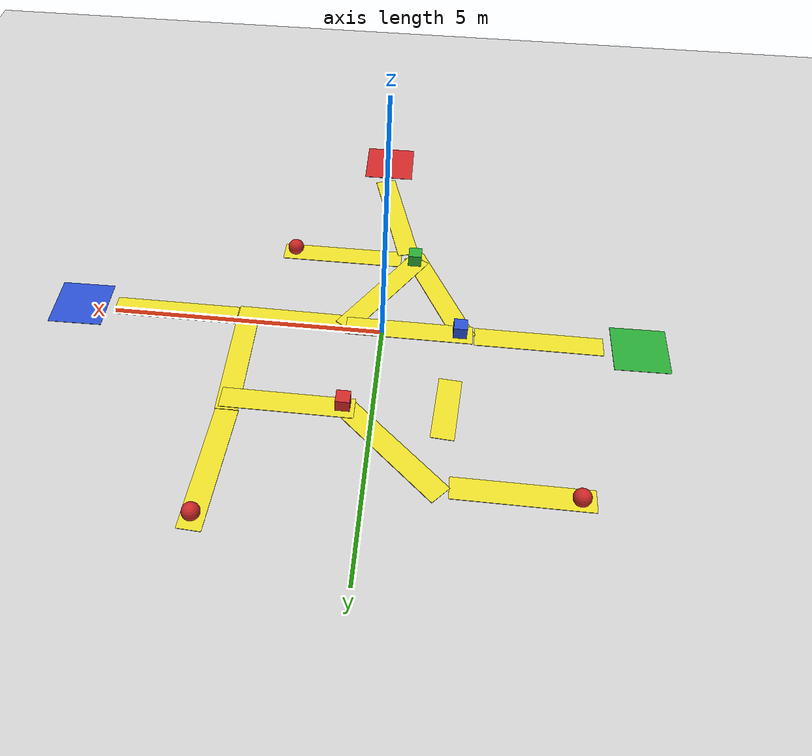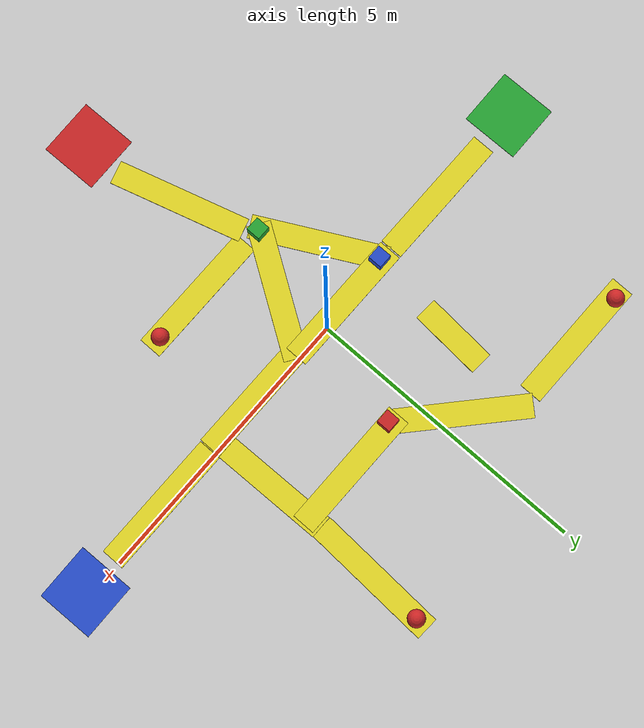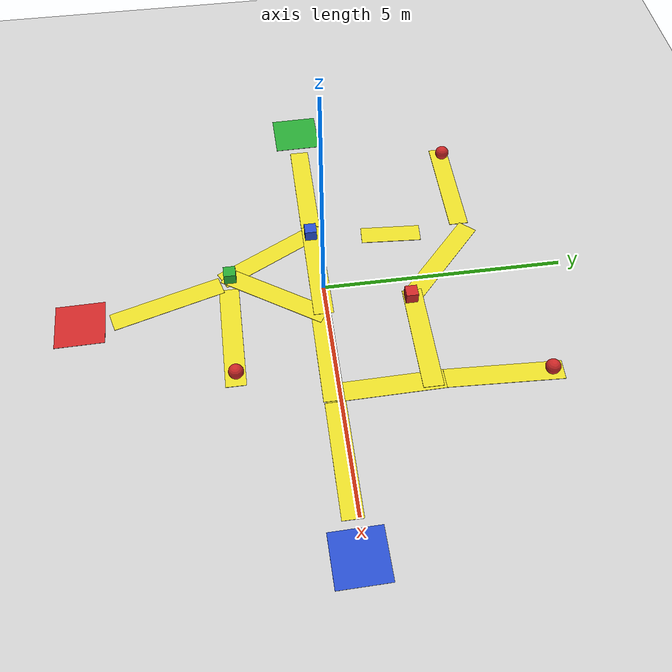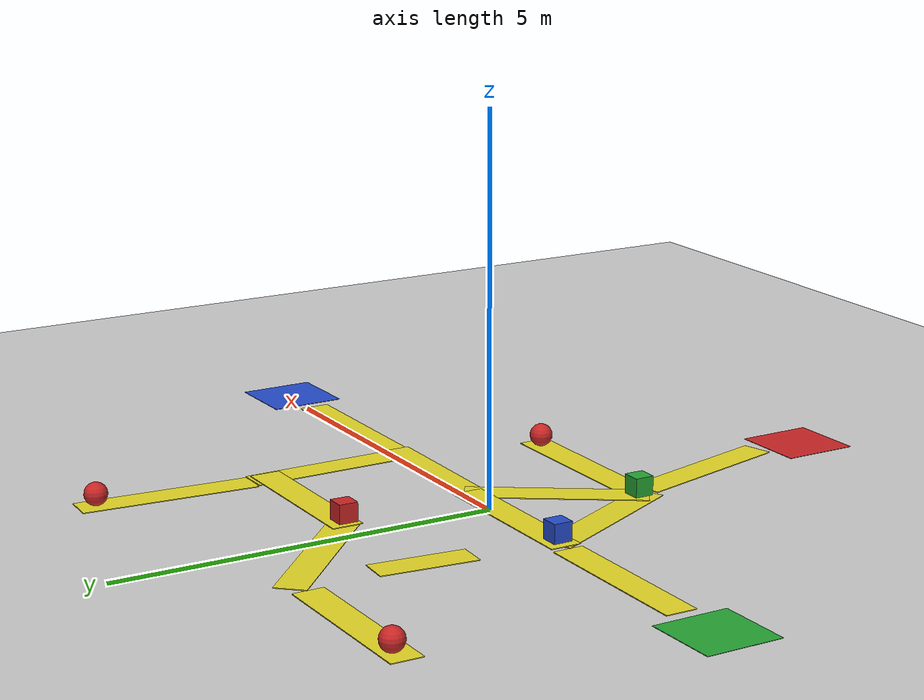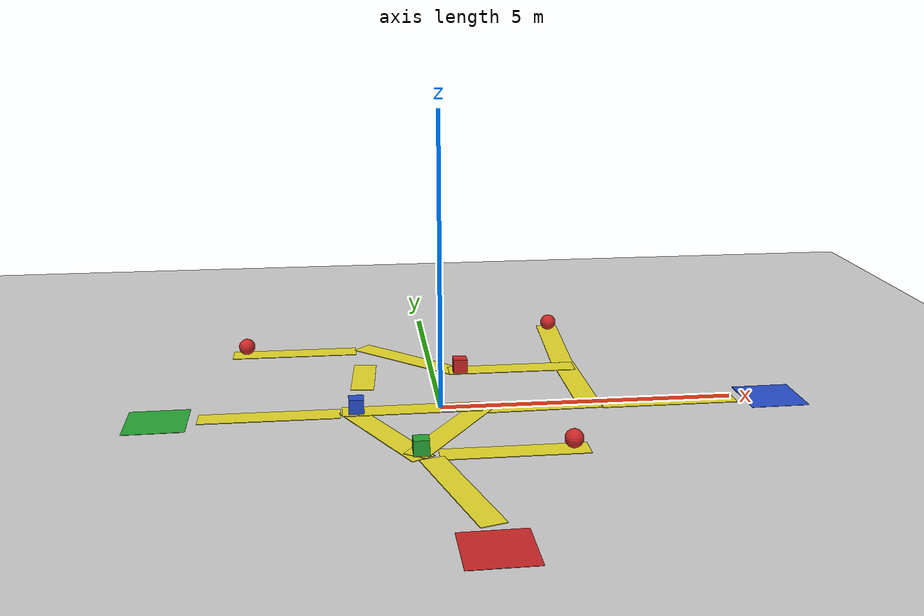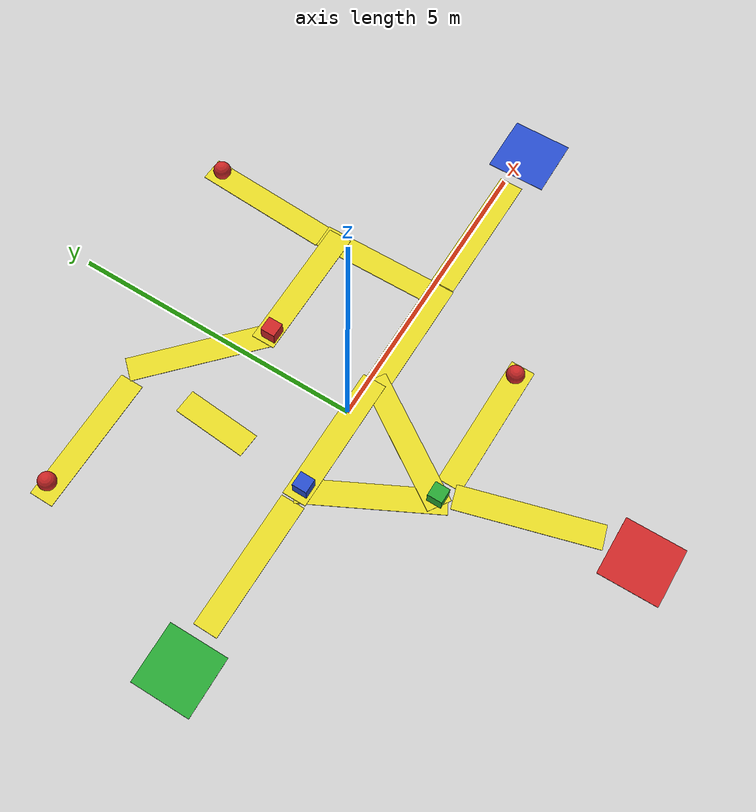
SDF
<sdf version="1.7">
 <world name="default">
  <light name="sun" type="directional">
   <pose>0 0 10 0 -0 0</pose>
   <diffuse>0.8 0.8 0.8 1</diffuse>
   <specular>0.2 0.2 0.2 1</specular>
   <attenuation>
    <range>1000</range>
    <constant>0.9</constant>
    <linear>0.01</linear>
    <quadratic>0.001</quadratic>
   </attenuation>
   <direction>-0.5 0.1 -0.9</direction>
   <spot><inner_angle>0</inner_angle><outer_angle>0</outer_angle><falloff>0</falloff></spot>
  </light>
  <model name="ground_plane">
   <static>1</static>
   <link name="link">
    <collision name="collision">
     <geometry><plane><normal>0 0 1</normal><size>100 100</size></plane></geometry>
     <surface><friction><ode><mu>100</mu><mu2>50</mu2></ode></friction></surface>
    </collision>
    <visual name="visual">
     <cast_shadows>0</cast_shadows>
     <geometry><plane><normal>0 0 1</normal><size>100 100</size></plane></geometry>
     <material>
      <script><uri>file://media/materials/scripts/gazebo.material</uri><name>Gazebo/Grey</name></script>
     </material>
    </visual>
   </link>
  </model>
  <gravity>0 0 -9.8</gravity>
  <magnetic_field>6e-06 2.3e-05 -4.2e-05</magnetic_field>
  <atmosphere type="adiabatic"/>
  <physics type="ode">
   <max_step_size>0.001</max_step_size>
   <real_time_factor>1</real_time_factor>
   <real_time_update_rate>1000</real_time_update_rate>
  </physics>
  <scene><ambient>0.4 0.4 0.4 1</ambient><background>0.7 0.7 0.7 1</background><shadows>1</shadows></scene>
  <spherical_coordinates>
   <surface_model>EARTH_WGS84</surface_model>
   <latitude_deg>0</latitude_deg>
   <longitude_deg>0</longitude_deg>
   <elevation>0</elevation>
   <heading_deg>0</heading_deg>
  </spherical_coordinates>
  <model name="bluecube">
   <link name="link_0">
    <inertial>
     <mass>0.05</mass>
     <inertia>
      <ixx>0.00833333</ixx>
      <ixy>0</ixy>
      <ixz>0</ixz>
      <iyy>0.00833333</iyy>
      <iyz>0</iyz>
      <izz>0.00833333</izz>
     </inertia>
    </inertial>
    <visual name="visual">
     <geometry><box><size>0.25 0.25 0.25</size></box></geometry>
     <material>
      <lighting>1</lighting>
      <script><uri>file://media/materials/scripts/gazebo.material</uri><name>Gazebo/Blue</name></script>
      <shader type="pixel"><normal_map>__default__</normal_map></shader>
      <ambient>0 0 1 1</ambient>
      <diffuse>0 0 1 1</diffuse>
      <specular>0.1 0.1 0.1 1</specular>
      <emissive>0 0 0 1</emissive>
     </material>
    </visual>
    <collision name="collision">
     <geometry><box><size>0.25 0.25 0.25</size></box></geometry>
     <surface>
      <friction>
       <ode><mu>0.1</mu><mu2>0.1</mu2><fdir1>0 0 0</fdir1><slip1>0</slip1><slip2>0</slip2></ode>
       <torsional>
        <coefficient>1</coefficient>
        <patch_radius>0</patch_radius>
        <surface_radius>0</surface_radius>
        <use_patch_radius>1</use_patch_radius>
        <ode><slip>0</slip></ode>
       </torsional>
      </friction>
      <bounce><restitution_coefficient>0</restitution_coefficient><threshold>1e+06</threshold></bounce>
      <contact>
       <collide_without_contact>0</collide_without_contact>
       <collide_without_contact_bitmask>1</collide_without_contact_bitmask>
       <collide_bitmask>1</collide_bitmask>
       <ode>
        <soft_cfm>0</soft_cfm>
        <soft_erp>0.2</soft_erp>
        <kp>1e+13</kp>
        <kd>1</kd>
        <max_vel>0.01</max_vel>
        <min_depth>0</min_depth>
       </ode>
       <bullet>
        <split_impulse>1</split_impulse>
        <split_impulse_penetration_threshold>-0.01</split_impulse_penetration_threshold>
        <soft_cfm>0</soft_cfm>
        <soft_erp>0.2</soft_erp>
        <kp>1e+13</kp>
        <kd>1</kd>
       </bullet>
      </contact>
     </surface>
    </collision>
   </link>
   <static>0</static>
   <pose>-1.41077 -0.107682 0.161123 -0.002132 -0.001105 0.000801</pose>
  </model>
  <model name="greencube">
   <link name="link_0">
    <inertial>
     <mass>0.05</mass>
     <inertia>
      <ixx>0.00833333</ixx>
      <ixy>0</ixy>
      <ixz>0</ixz>
      <iyy>0.00833333</iyy>
      <iyz>0</iyz>
      <izz>0.00833333</izz>
     </inertia>
    </inertial>
    <visual name="visual">
     <geometry><box><size>0.25 0.25 0.25</size></box></geometry>
     <material>
      <lighting>1</lighting>
      <script><uri>file://media/materials/scripts/gazebo.material</uri><name>Gazebo/Green</name></script>
      <shader type="pixel"><normal_map>__default__</normal_map></shader>
      <ambient>0 1 0 1</ambient>
      <diffuse>0 1 0 1</diffuse>
      <specular>0.1 0.1 0.1 1</specular>
      <emissive>0 0 0 1</emissive>
     </material>
    </visual>
    <collision name="collision">
     <geometry><box><size>0.25 0.25 0.25</size></box></geometry>
     <surface>
      <friction>
       <ode><mu>0.1</mu><mu2>0.1</mu2><fdir1>0 0 0</fdir1><slip1>0</slip1><slip2>0</slip2></ode>
       <torsional>
        <coefficient>1</coefficient>
        <patch_radius>0</patch_radius>
        <surface_radius>0</surface_radius>
        <use_patch_radius>1</use_patch_radius>
        <ode><slip>0</slip></ode>
       </torsional>
      </friction>
      <bounce><restitution_coefficient>0</restitution_coefficient><threshold>1e+06</threshold></bounce>
      <contact>
       <collide_without_contact>0</collide_without_contact>
       <collide_without_contact_bitmask>1</collide_without_contact_bitmask>
       <collide_bitmask>1</collide_bitmask>
       <ode>
        <soft_cfm>0</soft_cfm>
        <soft_erp>0.2</soft_erp>
        <kp>1e+13</kp>
        <kd>1</kd>
        <max_vel>0.01</max_vel>
        <min_depth>0</min_depth>
       </ode>
       <bullet>
        <split_impulse>1</split_impulse>
        <split_impulse_penetration_threshold>-0.01</split_impulse_penetration_threshold>
        <soft_cfm>0</soft_cfm>
        <soft_erp>0.2</soft_erp>
        <kp>1e+13</kp>
        <kd>1</kd>
       </bullet>
      </contact>
     </surface>
    </collision>
   </link>
   <static>0</static>
   <pose>-0.470413 -1.89682 0.152289 -0.002128 -0.002744 -9.7e-05</pose>
  </model>
  <model name="redcube">
   <link name="link_0">
    <inertial>
     <mass>0.05</mass>
     <inertia>
      <ixx>0.00833333</ixx>
      <ixy>0</ixy>
      <ixz>0</ixz>
      <iyy>0.00833333</iyy>
      <iyz>0</iyz>
      <izz>0.00833333</izz>
     </inertia>
    </inertial>
    <visual name="visual">
     <geometry><box><size>0.25 0.25 0.25</size></box></geometry>
     <material>
      <lighting>1</lighting>
      <script><uri>file://media/materials/scripts/gazebo.material</uri><name>Gazebo/Red</name></script>
      <shader type="pixel"><normal_map>__default__</normal_map></shader>
      <ambient>1 0 0 1</ambient>
      <diffuse>1 0 0 1</diffuse>
      <specular>0.1 0.1 0.1 1</specular>
      <emissive>0 0 0 1</emissive>
     </material>
    </visual>
    <collision name="collision">
     <geometry><box><size>0.25 0.25 0.25</size></box></geometry>
     <surface>
      <friction>
       <ode><mu>0.1</mu><mu2>0.1</mu2><fdir1>0 0 0</fdir1><slip1>0</slip1><slip2>0</slip2></ode>
       <torsional>
        <coefficient>1</coefficient>
        <patch_radius>0</patch_radius>
        <surface_radius>0</surface_radius>
        <use_patch_radius>1</use_patch_radius>
        <ode><slip>0</slip></ode>
       </torsional>
      </friction>
      <bounce><restitution_coefficient>0</restitution_coefficient><threshold>1e+06</threshold></bounce>
      <contact>
       <collide_without_contact>0</collide_without_contact>
       <collide_without_contact_bitmask>1</collide_without_contact_bitmask>
       <collide_bitmask>1</collide_bitmask>
       <ode>
        <soft_cfm>0</soft_cfm>
        <soft_erp>0.2</soft_erp>
        <kp>1e+13</kp>
        <kd>1</kd>
        <max_vel>0.01</max_vel>
        <min_depth>0</min_depth>
       </ode>
       <bullet>
        <split_impulse>1</split_impulse>
        <split_impulse_penetration_threshold>-0.01</split_impulse_penetration_threshold>
        <soft_cfm>0</soft_cfm>
        <soft_erp>0.2</soft_erp>
        <kp>1e+13</kp>
        <kd>1</kd>
       </bullet>
      </contact>
     </surface>
    </collision>
   </link>
   <static>0</static>
   <pose>0.508145 1.73672 0.149395 0.003593 -0.000509 -0.000436</pose>
  </model>
  <model name="yellowcube">
   <link name="link">
    <inertial>
     <mass>10000</mass>
     <inertia><ixx>1666.67</ixx><ixy>0</ixy><ixz>0</ixz><iyy>1666.67</iyy><iyz>0</iyz><izz>1666.67</izz></inertia>
    </inertial>
    <visual name="visual">
     <geometry><box><size>2.31861 0.405301 0.01</size></box></geometry>
     <material>
      <script><name>Gazebo/Yellow</name><uri>file://media/materials/scripts/gazebo.material</uri></script>
      <shader type="pixel"><normal_map>__default__</normal_map></shader>
      <ambient>1 1 0 1</ambient>
      <diffuse>1 1 0 1</diffuse>
      <emissive>0 0 0 1</emissive>
     </material>
    </visual>
    <collision name="collision">
     <geometry><box><size>2.31861 0.405301 0.011851</size></box></geometry>
     <surface>
      <friction>
       <ode><mu>1</mu><mu2>1</mu2><fdir1>0 0 0</fdir1><slip1>0</slip1><slip2>0</slip2></ode>
       <torsional>
        <coefficient>1</coefficient>
        <patch_radius>0</patch_radius>
        <surface_radius>0</surface_radius>
        <use_patch_radius>1</use_patch_radius>
        <ode><slip>0</slip></ode>
       </torsional>
      </friction>
      <bounce><restitution_coefficient>0</restitution_coefficient><threshold>1e+06</threshold></bounce>
      <contact>
       <collide_without_contact>0</collide_without_contact>
       <collide_without_contact_bitmask>1</collide_without_contact_bitmask>
       <collide_bitmask>1</collide_bitmask>
       <ode>
        <soft_cfm>0</soft_cfm>
        <soft_erp>0.2</soft_erp>
        <kp>1e+13</kp>
        <kd>1</kd>
        <max_vel>0.01</max_vel>
        <min_depth>0</min_depth>
       </ode>
       <bullet>
        <split_impulse>1</split_impulse>
        <split_impulse_penetration_threshold>-0.01</split_impulse_penetration_threshold>
        <soft_cfm>0</soft_cfm>
        <soft_erp>0.2</soft_erp>
        <kp>1e+13</kp>
        <kd>1</kd>
       </bullet>
      </contact>
     </surface>
    </collision>
   </link>
   <static>0</static>
   <pose>-0.486369 -0.079066 0.031159 -0.002126 -0.001111 0.000133</pose>
  </model>
  <model name="yellowcube_0">
   <link name="link">
    <inertial>
     <mass>10000</mass>
     <inertia><ixx>1666.67</ixx><ixy>0</ixy><ixz>0</ixz><iyy>1666.67</iyy><iyz>0</iyz><izz>1666.67</izz></inertia>
    </inertial>
    <visual name="visual">
     <geometry><box><size>1.26774 0.405301 0.01</size></box></geometry>
     <material>
      <script><name>Gazebo/Yellow</name><uri>file://media/materials/scripts/gazebo.material</uri></script>
      <shader type="pixel"><normal_map>__default__</normal_map></shader>
      <ambient>1 1 0 1</ambient>
      <diffuse>1 1 0 1</diffuse>
      <emissive>0 0 0 1</emissive>
     </material>
    </visual>
    <collision name="collision">
     <geometry><box><size>1.26774 0.405301 0.011851</size></box></geometry>
     <surface>
      <friction>
       <ode><mu>1</mu><mu2>1</mu2><fdir1>0 0 0</fdir1><slip1>0</slip1><slip2>0</slip2></ode>
       <torsional>
        <coefficient>1</coefficient>
        <patch_radius>0</patch_radius>
        <surface_radius>0</surface_radius>
        <use_patch_radius>1</use_patch_radius>
        <ode><slip>0</slip></ode>
       </torsional>
      </friction>
      <bounce><restitution_coefficient>0</restitution_coefficient><threshold>1e+06</threshold></bounce>
      <contact>
       <collide_without_contact>0</collide_without_contact>
       <collide_without_contact_bitmask>1</collide_without_contact_bitmask>
       <collide_bitmask>1</collide_bitmask>
       <ode>
        <soft_cfm>0</soft_cfm>
        <soft_erp>0.2</soft_erp>
        <kp>1e+13</kp>
        <kd>1</kd>
        <max_vel>0.01</max_vel>
        <min_depth>0</min_depth>
       </ode>
       <bullet>
        <split_impulse>1</split_impulse>
        <split_impulse_penetration_threshold>-0.01</split_impulse_penetration_threshold>
        <soft_cfm>0</soft_cfm>
        <soft_erp>0.2</soft_erp>
        <kp>1e+13</kp>
        <kd>1</kd>
       </bullet>
      </contact>
     </surface>
    </collision>
   </link>
   <static>0</static>
   <pose>-1.24305 1.61477 0.01794 3e-06 -0.00766 1.50072</pose>
  </model>
  <model name="yellowcube_1">
   <link name="link">
    <inertial>
     <mass>10000</mass>
     <inertia><ixx>1666.67</ixx><ixy>0</ixy><ixz>0</ixz><iyy>1666.67</iyy><iyz>0</iyz><izz>1666.67</izz></inertia>
    </inertial>
    <visual name="visual">
     <geometry><box><size>2.31861 0.405301 0.01</size></box></geometry>
     <material>
      <script><name>Gazebo/Yellow</name><uri>file://media/materials/scripts/gazebo.material</uri></script>
      <shader type="pixel"><normal_map>__default__</normal_map></shader>
      <ambient>1 1 0 1</ambient>
      <diffuse>1 1 0 1</diffuse>
      <emissive>0 0 0 1</emissive>
     </material>
    </visual>
    <collision name="collision">
     <geometry><box><size>2.31861 0.405301 0.011851</size></box></geometry>
     <surface>
      <friction>
       <ode><mu>1</mu><mu2>1</mu2><fdir1>0 0 0</fdir1><slip1>0</slip1><slip2>0</slip2></ode>
       <torsional>
        <coefficient>1</coefficient>
        <patch_radius>0</patch_radius>
        <surface_radius>0</surface_radius>
        <use_patch_radius>1</use_patch_radius>
        <ode><slip>0</slip></ode>
       </torsional>
      </friction>
      <bounce><restitution_coefficient>0</restitution_coefficient><threshold>1e+06</threshold></bounce>
      <contact>
       <collide_without_contact>0</collide_without_contact>
       <collide_without_contact_bitmask>1</collide_without_contact_bitmask>
       <collide_bitmask>1</collide_bitmask>
       <ode>
        <soft_cfm>0</soft_cfm>
        <soft_erp>0.2</soft_erp>
        <kp>1e+13</kp>
        <kd>1</kd>
        <max_vel>0.01</max_vel>
        <min_depth>0</min_depth>
       </ode>
       <bullet>
        <split_impulse>1</split_impulse>
        <split_impulse_penetration_threshold>-0.01</split_impulse_penetration_threshold>
        <soft_cfm>0</soft_cfm>
        <soft_erp>0.2</soft_erp>
        <kp>1e+13</kp>
        <kd>1</kd>
       </bullet>
      </contact>
     </surface>
    </collision>
   </link>
   <static>0</static>
   <pose>2.49159 0.875406 0.006372 -1e-06 0.000385 -1.55579</pose>
  </model>
  <model name="yellowcube_2">
   <link name="link">
    <inertial>
     <mass>10000</mass>
     <inertia><ixx>1666.67</ixx><ixy>0</ixy><ixz>0</ixz><iyy>1666.67</iyy><iyz>0</iyz><izz>1666.67</izz></inertia>
    </inertial>
    <visual name="visual">
     <geometry><box><size>2.31861 0.405301 0.01</size></box></geometry>
     <material>
      <script><name>Gazebo/Yellow</name><uri>file://media/materials/scripts/gazebo.material</uri></script>
      <shader type="pixel"><normal_map>__default__</normal_map></shader>
      <ambient>1 1 0 1</ambient>
      <diffuse>1 1 0 1</diffuse>
      <emissive>0 0 0 1</emissive>
     </material>
    </visual>
    <collision name="collision">
     <geometry><box><size>2.31861 0.405301 0.011851</size></box></geometry>
     <surface>
      <friction>
       <ode><mu>1</mu><mu2>1</mu2><fdir1>0 0 0</fdir1><slip1>0</slip1><slip2>0</slip2></ode>
       <torsional>
        <coefficient>1</coefficient>
        <patch_radius>0</patch_radius>
        <surface_radius>0</surface_radius>
        <use_patch_radius>1</use_patch_radius>
        <ode><slip>0</slip></ode>
       </torsional>
      </friction>
      <bounce><restitution_coefficient>0</restitution_coefficient><threshold>1e+06</threshold></bounce>
      <contact>
       <collide_without_contact>0</collide_without_contact>
       <collide_without_contact_bitmask>1</collide_without_contact_bitmask>
       <collide_bitmask>1</collide_bitmask>
       <ode>
        <soft_cfm>0</soft_cfm>
        <soft_erp>0.2</soft_erp>
        <kp>1e+13</kp>
        <kd>1</kd>
        <max_vel>0.01</max_vel>
        <min_depth>0</min_depth>
       </ode>
       <bullet>
        <split_impulse>1</split_impulse>
        <split_impulse_penetration_threshold>-0.01</split_impulse_penetration_threshold>
        <soft_cfm>0</soft_cfm>
        <soft_erp>0.2</soft_erp>
        <kp>1e+13</kp>
        <kd>1</kd>
       </bullet>
      </contact>
     </surface>
    </collision>
   </link>
   <static>0</static>
   <pose>-0.980984 -1.03916 0.011959 6.5e-05 0.005224 -1.0904</pose>
  </model>
  <model name="yellowcube_3">
   <link name="link">
    <inertial>
     <mass>10000</mass>
     <inertia><ixx>1666.67</ixx><ixy>0</ixy><ixz>0</ixz><iyy>1666.67</iyy><iyz>0</iyz><izz>1666.67</izz></inertia>
    </inertial>
    <visual name="visual">
     <geometry><box><size>2.31861 0.405301 0.01</size></box></geometry>
     <material>
      <script><name>Gazebo/Yellow</name><uri>file://media/materials/scripts/gazebo.material</uri></script>
      <shader type="pixel"><normal_map>__default__</normal_map></shader>
      <ambient>1 1 0 1</ambient>
      <diffuse>1 1 0 1</diffuse>
      <emissive>0 0 0 1</emissive>
     </material>
    </visual>
    <collision name="collision">
     <geometry><box><size>2.31861 0.405301 0.011851</size></box></geometry>
     <surface>
      <friction>
       <ode><mu>1</mu><mu2>1</mu2><fdir1>0 0 0</fdir1><slip1>0</slip1><slip2>0</slip2></ode>
       <torsional>
        <coefficient>1</coefficient>
        <patch_radius>0</patch_radius>
        <surface_radius>0</surface_radius>
        <use_patch_radius>1</use_patch_radius>
        <ode><slip>0</slip></ode>
       </torsional>
      </friction>
      <bounce><restitution_coefficient>0</restitution_coefficient><threshold>1e+06</threshold></bounce>
      <contact>
       <collide_without_contact>0</collide_without_contact>
       <collide_without_contact_bitmask>1</collide_without_contact_bitmask>
       <collide_bitmask>1</collide_bitmask>
       <ode>
        <soft_cfm>0</soft_cfm>
        <soft_erp>0.2</soft_erp>
        <kp>1e+13</kp>
        <kd>1</kd>
        <max_vel>0.01</max_vel>
        <min_depth>0</min_depth>
       </ode>
       <bullet>
        <split_impulse>1</split_impulse>
        <split_impulse_penetration_threshold>-0.01</split_impulse_penetration_threshold>
        <soft_cfm>0</soft_cfm>
        <soft_erp>0.2</soft_erp>
        <kp>1e+13</kp>
        <kd>1</kd>
       </bullet>
      </contact>
     </surface>
    </collision>
   </link>
   <static>0</static>
   <pose>1.53113 -0.134214 0.014136 4.5e-05 -0.007145 -0.001095</pose>
  </model>
  <model name="yellowcube_4">
   <link name="link">
    <inertial>
     <mass>10000</mass>
     <inertia><ixx>1666.67</ixx><ixy>0</ixy><ixz>0</ixz><iyy>1666.67</iyy><iyz>0</iyz><izz>1666.67</izz></inertia>
    </inertial>
    <visual name="visual">
     <geometry><box><size>2.31861 0.405301 0.01</size></box></geometry>
     <material>
      <script><name>Gazebo/Yellow</name><uri>file://media/materials/scripts/gazebo.material</uri></script>
      <shader type="pixel"><normal_map>__default__</normal_map></shader>
      <ambient>1 1 0 1</ambient>
      <diffuse>1 1 0 1</diffuse>
      <emissive>0 0 0 1</emissive>
     </material>
    </visual>
    <collision name="collision">
     <geometry><box><size>2.31861 0.405301 0.011851</size></box></geometry>
     <surface>
      <friction>
       <ode><mu>1</mu><mu2>1</mu2><fdir1>0 0 0</fdir1><slip1>0</slip1><slip2>0</slip2></ode>
       <torsional>
        <coefficient>1</coefficient>
        <patch_radius>0</patch_radius>
        <surface_radius>0</surface_radius>
        <use_patch_radius>1</use_patch_radius>
        <ode><slip>0</slip></ode>
       </torsional>
      </friction>
      <bounce><restitution_coefficient>0</restitution_coefficient><threshold>1e+06</threshold></bounce>
      <contact>
       <collide_without_contact>0</collide_without_contact>
       <collide_without_contact_bitmask>1</collide_without_contact_bitmask>
       <collide_bitmask>1</collide_bitmask>
       <ode>
        <soft_cfm>0</soft_cfm>
        <soft_erp>0.2</soft_erp>
        <kp>1e+13</kp>
        <kd>1</kd>
        <max_vel>0.01</max_vel>
        <min_depth>0</min_depth>
       </ode>
       <bullet>
        <split_impulse>1</split_impulse>
        <split_impulse_penetration_threshold>-0.01</split_impulse_penetration_threshold>
        <soft_cfm>0</soft_cfm>
        <soft_erp>0.2</soft_erp>
        <kp>1e+13</kp>
        <kd>1</kd>
       </bullet>
      </contact>
     </surface>
    </collision>
   </link>
   <static>0</static>
   <pose>0.067354 -1.01947 0.020959 0.00346 -0.000282 -2.1531</pose>
  </model>
  <model name="yellowcube_5">
   <link name="link">
    <inertial>
     <mass>10000</mass>
     <inertia><ixx>1666.67</ixx><ixy>0</ixy><ixz>0</ixz><iyy>1666.67</iyy><iyz>0</iyz><izz>1666.67</izz></inertia>
    </inertial>
    <visual name="visual">
     <geometry><box><size>2.31861 0.405301 0.01</size></box></geometry>
     <material>
      <script><name>Gazebo/Yellow</name><uri>file://media/materials/scripts/gazebo.material</uri></script>
      <shader type="pixel"><normal_map>__default__</normal_map></shader>
      <ambient>1 1 0 1</ambient>
      <diffuse>1 1 0 1</diffuse>
      <emissive>0 0 0 1</emissive>
     </material>
    </visual>
    <collision name="collision">
     <geometry><box><size>2.31861 0.405301 0.011851</size></box></geometry>
     <surface>
      <friction>
       <ode><mu>1</mu><mu2>1</mu2><fdir1>0 0 0</fdir1><slip1>0</slip1><slip2>0</slip2></ode>
       <torsional>
        <coefficient>1</coefficient>
        <patch_radius>0</patch_radius>
        <surface_radius>0</surface_radius>
        <use_patch_radius>1</use_patch_radius>
        <ode><slip>0</slip></ode>
       </torsional>
      </friction>
      <bounce><restitution_coefficient>0</restitution_coefficient><threshold>1e+06</threshold></bounce>
      <contact>
       <collide_without_contact>0</collide_without_contact>
       <collide_without_contact_bitmask>1</collide_without_contact_bitmask>
       <collide_bitmask>1</collide_bitmask>
       <ode>
        <soft_cfm>0</soft_cfm>
        <soft_erp>0.2</soft_erp>
        <kp>1e+13</kp>
        <kd>1</kd>
        <max_vel>0.01</max_vel>
        <min_depth>0</min_depth>
       </ode>
       <bullet>
        <split_impulse>1</split_impulse>
        <split_impulse_penetration_threshold>-0.01</split_impulse_penetration_threshold>
        <soft_cfm>0</soft_cfm>
        <soft_erp>0.2</soft_erp>
        <kp>1e+13</kp>
        <kd>1</kd>
       </bullet>
      </contact>
     </surface>
    </collision>
   </link>
   <static>0</static>
   <pose>-0.378179 2.53615 0.011919 0 0.00517 -0.740898</pose>
  </model>
  <model name="yellowcube_6">
   <link name="link">
    <inertial>
     <mass>10000</mass>
     <inertia><ixx>1666.67</ixx><ixy>0</ixy><ixz>0</ixz><iyy>1666.67</iyy><iyz>0</iyz><izz>1666.67</izz></inertia>
    </inertial>
    <visual name="visual">
     <geometry><box><size>2.31861 0.405301 0.01</size></box></geometry>
     <material>
      <script><name>Gazebo/Yellow</name><uri>file://media/materials/scripts/gazebo.material</uri></script>
      <shader type="pixel"><normal_map>__default__</normal_map></shader>
      <ambient>1 1 0 1</ambient>
      <diffuse>1 1 0 1</diffuse>
      <emissive>0 0 0 1</emissive>
     </material>
    </visual>
    <collision name="collision">
     <geometry><box><size>2.31861 0.405301 0.011851</size></box></geometry>
     <surface>
      <friction>
       <ode><mu>1</mu><mu2>1</mu2><fdir1>0 0 0</fdir1><slip1>0</slip1><slip2>0</slip2></ode>
       <torsional>
        <coefficient>1</coefficient>
        <patch_radius>0</patch_radius>
        <surface_radius>0</surface_radius>
        <use_patch_radius>1</use_patch_radius>
        <ode><slip>0</slip></ode>
       </torsional>
      </friction>
      <bounce><restitution_coefficient>0</restitution_coefficient><threshold>1e+06</threshold></bounce>
      <contact>
       <collide_without_contact>0</collide_without_contact>
       <collide_without_contact_bitmask>1</collide_without_contact_bitmask>
       <collide_bitmask>1</collide_bitmask>
       <ode>
        <soft_cfm>0</soft_cfm>
        <soft_erp>0.2</soft_erp>
        <kp>1e+13</kp>
        <kd>1</kd>
        <max_vel>0.01</max_vel>
        <min_depth>0</min_depth>
       </ode>
       <bullet>
        <split_impulse>1</split_impulse>
        <split_impulse_penetration_threshold>-0.01</split_impulse_penetration_threshold>
        <soft_cfm>0</soft_cfm>
        <soft_erp>0.2</soft_erp>
        <kp>1e+13</kp>
        <kd>1</kd>
       </bullet>
      </contact>
     </surface>
    </collision>
   </link>
   <static>0</static>
   <pose>1.46585 1.78835 0.018954 0.003597 -0.000336 3.4e-05</pose>
  </model>
  <model name="yellowcube_7">
   <link name="link">
    <inertial>
     <mass>10000</mass>
     <inertia><ixx>1666.67</ixx><ixy>0</ixy><ixz>0</ixz><iyy>1666.67</iyy><iyz>0</iyz><izz>1666.67</izz></inertia>
    </inertial>
    <visual name="visual">
     <geometry><box><size>2.31861 0.405301 0.01</size></box></geometry>
     <material>
      <script><name>Gazebo/Yellow</name><uri>file://media/materials/scripts/gazebo.material</uri></script>
      <shader type="pixel"><normal_map>__default__</normal_map></shader>
      <ambient>1 1 0 1</ambient>
      <diffuse>1 1 0 1</diffuse>
      <emissive>0 0 0 1</emissive>
     </material>
    </visual>
    <collision name="collision">
     <geometry><box><size>2.31861 0.405301 0.011851</size></box></geometry>
     <surface>
      <friction>
       <ode><mu>1</mu><mu2>1</mu2><fdir1>0 0 0</fdir1><slip1>0</slip1><slip2>0</slip2></ode>
       <torsional>
        <coefficient>1</coefficient>
        <patch_radius>0</patch_radius>
        <surface_radius>0</surface_radius>
        <use_patch_radius>1</use_patch_radius>
        <ode><slip>0</slip></ode>
       </torsional>
      </friction>
      <bounce><restitution_coefficient>0</restitution_coefficient><threshold>1e+06</threshold></bounce>
      <contact>
       <collide_without_contact>0</collide_without_contact>
       <collide_without_contact_bitmask>1</collide_without_contact_bitmask>
       <collide_bitmask>1</collide_bitmask>
       <ode>
        <soft_cfm>0</soft_cfm>
        <soft_erp>0.2</soft_erp>
        <kp>1e+13</kp>
        <kd>1</kd>
        <max_vel>0.01</max_vel>
        <min_depth>0</min_depth>
       </ode>
       <bullet>
        <split_impulse>1</split_impulse>
        <split_impulse_penetration_threshold>-0.01</split_impulse_penetration_threshold>
        <soft_cfm>0</soft_cfm>
        <soft_erp>0.2</soft_erp>
        <kp>1e+13</kp>
        <kd>1</kd>
       </bullet>
      </contact>
     </surface>
    </collision>
   </link>
   <static>0</static>
   <pose>3.87093 -0.119318 0.005906 0 -0 4.2e-05</pose>
  </model>
  <model name="yellowcube_8">
   <link name="link">
    <inertial>
     <mass>10000</mass>
     <inertia><ixx>1666.67</ixx><ixy>0</ixy><ixz>0</ixz><iyy>1666.67</iyy><iyz>0</iyz><izz>1666.67</izz></inertia>
    </inertial>
    <visual name="visual">
     <geometry><box><size>2.31861 0.405301 0.01</size></box></geometry>
     <material>
      <script><name>Gazebo/Yellow</name><uri>file://media/materials/scripts/gazebo.material</uri></script>
      <shader type="pixel"><normal_map>__default__</normal_map></shader>
      <ambient>1 1 0 1</ambient>
      <diffuse>1 1 0 1</diffuse>
      <emissive>0 0 0 1</emissive>
     </material>
    </visual>
    <collision name="collision">
     <geometry><box><size>2.31861 0.405301 0.011851</size></box></geometry>
     <surface>
      <friction>
       <ode><mu>1</mu><mu2>1</mu2><fdir1>0 0 0</fdir1><slip1>0</slip1><slip2>0</slip2></ode>
       <torsional>
        <coefficient>1</coefficient>
        <patch_radius>0</patch_radius>
        <surface_radius>0</surface_radius>
        <use_patch_radius>1</use_patch_radius>
        <ode><slip>0</slip></ode>
       </torsional>
      </friction>
      <bounce><restitution_coefficient>0</restitution_coefficient><threshold>1e+06</threshold></bounce>
      <contact>
       <collide_without_contact>0</collide_without_contact>
       <collide_without_contact_bitmask>1</collide_without_contact_bitmask>
       <collide_bitmask>1</collide_bitmask>
       <ode>
        <soft_cfm>0</soft_cfm>
        <soft_erp>0.2</soft_erp>
        <kp>1e+13</kp>
        <kd>1</kd>
        <max_vel>0.01</max_vel>
        <min_depth>0</min_depth>
       </ode>
       <bullet>
        <split_impulse>1</split_impulse>
        <split_impulse_penetration_threshold>-0.01</split_impulse_penetration_threshold>
        <soft_cfm>0</soft_cfm>
        <soft_erp>0.2</soft_erp>
        <kp>1e+13</kp>
        <kd>1</kd>
       </bullet>
      </contact>
     </surface>
    </collision>
   </link>
   <static>0</static>
   <pose>-0.005754 -3.20527 0.012146 0.001471 0.005109 -1.28876</pose>
  </model>
  <model name="yellowcube_9">
   <link name="link">
    <inertial>
     <mass>10000</mass>
     <inertia><ixx>1666.67</ixx><ixy>0</ixy><ixz>0</ixz><iyy>1666.67</iyy><iyz>0</iyz><izz>1666.67</izz></inertia>
    </inertial>
    <visual name="visual">
     <geometry><box><size>2.31861 0.405301 0.01</size></box></geometry>
     <material>
      <script><name>Gazebo/Yellow</name><uri>file://media/materials/scripts/gazebo.material</uri></script>
      <shader type="pixel"><normal_map>__default__</normal_map></shader>
      <ambient>1 1 0 1</ambient>
      <diffuse>1 1 0 1</diffuse>
      <emissive>0 0 0 1</emissive>
     </material>
    </visual>
    <collision name="collision">
     <geometry><box><size>2.31861 0.405301 0.011851</size></box></geometry>
     <surface>
      <friction>
       <ode><mu>1</mu><mu2>1</mu2><fdir1>0 0 0</fdir1><slip1>0</slip1><slip2>0</slip2></ode>
       <torsional>
        <coefficient>1</coefficient>
        <patch_radius>0</patch_radius>
        <surface_radius>0</surface_radius>
        <use_patch_radius>1</use_patch_radius>
        <ode><slip>0</slip></ode>
       </torsional>
      </friction>
      <bounce><restitution_coefficient>0</restitution_coefficient><threshold>1e+06</threshold></bounce>
      <contact>
       <collide_without_contact>0</collide_without_contact>
       <collide_without_contact_bitmask>1</collide_without_contact_bitmask>
       <collide_bitmask>1</collide_bitmask>
       <ode>
        <soft_cfm>0</soft_cfm>
        <soft_erp>0.2</soft_erp>
        <kp>1e+13</kp>
        <kd>1</kd>
        <max_vel>0.01</max_vel>
        <min_depth>0</min_depth>
       </ode>
       <bullet>
        <split_impulse>1</split_impulse>
        <split_impulse_penetration_threshold>-0.01</split_impulse_penetration_threshold>
        <soft_cfm>0</soft_cfm>
        <soft_erp>0.2</soft_erp>
        <kp>1e+13</kp>
        <kd>1</kd>
       </bullet>
      </contact>
     </surface>
    </collision>
   </link>
   <static>0</static>
   <pose>2.52249 3.18813 0.0016 0.000371 -0.005726 1.52096</pose>
  </model>
  <model name="yellowcube_10">
   <link name="link">
    <inertial>
     <mass>10000</mass>
     <inertia><ixx>1666.67</ixx><ixy>0</ixy><ixz>0</ixz><iyy>1666.67</iyy><iyz>0</iyz><izz>1666.67</izz></inertia>
    </inertial>
    <visual name="visual">
     <geometry><box><size>2.31861 0.405301 0.01</size></box></geometry>
     <material>
      <script><name>Gazebo/Yellow</name><uri>file://media/materials/scripts/gazebo.material</uri></script>
      <shader type="pixel"><normal_map>__default__</normal_map></shader>
      <ambient>1 1 0 1</ambient>
      <diffuse>1 1 0 1</diffuse>
      <emissive>0 0 0 1</emissive>
     </material>
    </visual>
    <collision name="collision">
     <geometry><box><size>2.31861 0.405301 0.011851</size></box></geometry>
     <surface>
      <friction>
       <ode><mu>1</mu><mu2>1</mu2><fdir1>0 0 0</fdir1><slip1>0</slip1><slip2>0</slip2></ode>
       <torsional>
        <coefficient>1</coefficient>
        <patch_radius>0</patch_radius>
        <surface_radius>0</surface_radius>
        <use_patch_radius>1</use_patch_radius>
        <ode><slip>0</slip></ode>
       </torsional>
      </friction>
      <bounce><restitution_coefficient>0</restitution_coefficient><threshold>1e+06</threshold></bounce>
      <contact>
       <collide_without_contact>0</collide_without_contact>
       <collide_without_contact_bitmask>1</collide_without_contact_bitmask>
       <collide_bitmask>1</collide_bitmask>
       <ode>
        <soft_cfm>0</soft_cfm>
        <soft_erp>0.2</soft_erp>
        <kp>1e+13</kp>
        <kd>1</kd>
        <max_vel>0.01</max_vel>
        <min_depth>0</min_depth>
       </ode>
       <bullet>
        <split_impulse>1</split_impulse>
        <split_impulse_penetration_threshold>-0.01</split_impulse_penetration_threshold>
        <soft_cfm>0</soft_cfm>
        <soft_erp>0.2</soft_erp>
        <kp>1e+13</kp>
        <kd>1</kd>
       </bullet>
      </contact>
     </surface>
    </collision>
   </link>
   <static>0</static>
   <pose>-2.83529 -0.082293 0.005847 0 -0 8e-06</pose>
  </model>
  <model name="yellowcube_11">
   <link name="link">
    <inertial>
     <mass>10000</mass>
     <inertia><ixx>1666.67</ixx><ixy>0</ixy><ixz>0</ixz><iyy>1666.67</iyy><iyz>0</iyz><izz>1666.67</izz></inertia>
    </inertial>
    <visual name="visual">
     <geometry><box><size>2.31861 0.405301 0.01</size></box></geometry>
     <material>
      <script><name>Gazebo/Yellow</name><uri>file://media/materials/scripts/gazebo.material</uri></script>
      <shader type="pixel"><normal_map>__default__</normal_map></shader>
      <ambient>1 1 0 1</ambient>
      <diffuse>1 1 0 1</diffuse>
      <emissive>0 0 0 1</emissive>
     </material>
    </visual>
    <collision name="collision">
     <geometry><box><size>2.31861 0.405301 0.011851</size></box></geometry>
     <surface>
      <friction>
       <ode><mu>1</mu><mu2>1</mu2><fdir1>0 0 0</fdir1><slip1>0</slip1><slip2>0</slip2></ode>
       <torsional>
        <coefficient>1</coefficient>
        <patch_radius>0</patch_radius>
        <surface_radius>0</surface_radius>
        <use_patch_radius>1</use_patch_radius>
        <ode><slip>0</slip></ode>
       </torsional>
      </friction>
      <bounce><restitution_coefficient>0</restitution_coefficient><threshold>1e+06</threshold></bounce>
      <contact>
       <collide_without_contact>0</collide_without_contact>
       <collide_without_contact_bitmask>1</collide_without_contact_bitmask>
       <collide_bitmask>1</collide_bitmask>
       <ode>
        <soft_cfm>0</soft_cfm>
        <soft_erp>0.2</soft_erp>
        <kp>1e+13</kp>
        <kd>1</kd>
        <max_vel>0.01</max_vel>
        <min_depth>0</min_depth>
       </ode>
       <bullet>
        <split_impulse>1</split_impulse>
        <split_impulse_penetration_threshold>-0.01</split_impulse_penetration_threshold>
        <soft_cfm>0</soft_cfm>
        <soft_erp>0.2</soft_erp>
        <kp>1e+13</kp>
        <kd>1</kd>
       </bullet>
      </contact>
     </surface>
    </collision>
   </link>
   <static>0</static>
   <pose>0.959015 -1.94361 0.005925 0 -0 1.4e-05</pose>
  </model>
  <model name="greenball">
   <link name="link">
    <inertial>
     <mass>0.05</mass>
     <inertia><ixx>0.005</ixx><ixy>0</ixy><ixz>0</ixz><iyy>0.005</iyy><iyz>0</iyz><izz>0.005</izz></inertia>
    </inertial>
    <visual name="visual">
     <geometry><sphere><radius>0.15</radius></sphere></geometry>
     <material>
      <script><name>Gazebo/Red</name><uri>file://media/materials/scripts/gazebo.material</uri></script>
      <shader type="pixel"><normal_map>__default__</normal_map></shader>
      <ambient>0 1 0 1</ambient>
      <diffuse>0 1 0 1</diffuse>
      <specular>0.1 0.1 0.1 1</specular>
      <emissive>0 0 0 1</emissive>
     </material>
    </visual>
    <collision name="collision">
     <geometry><sphere><radius>0.15</radius></sphere></geometry>
     <surface>
      <friction>
       <ode><mu>1</mu><mu2>1</mu2><fdir1>0 0 0</fdir1><slip1>0</slip1><slip2>0</slip2></ode>
       <torsional>
        <coefficient>1</coefficient>
        <patch_radius>0</patch_radius>
        <surface_radius>0</surface_radius>
        <use_patch_radius>1</use_patch_radius>
        <ode><slip>0</slip></ode>
       </torsional>
      </friction>
      <bounce><restitution_coefficient>0</restitution_coefficient><threshold>1e+06</threshold></bounce>
      <contact>
       <collide_without_contact>0</collide_without_contact>
       <collide_without_contact_bitmask>1</collide_without_contact_bitmask>
       <collide_bitmask>1</collide_bitmask>
       <ode>
        <soft_cfm>0</soft_cfm>
        <soft_erp>0.2</soft_erp>
        <kp>1e+13</kp>
        <kd>1</kd>
        <max_vel>0.01</max_vel>
        <min_depth>0</min_depth>
       </ode>
       <bullet>
        <split_impulse>1</split_impulse>
        <split_impulse_penetration_threshold>-0.01</split_impulse_penetration_threshold>
        <soft_cfm>0</soft_cfm>
        <soft_erp>0.2</soft_erp>
        <kp>1e+13</kp>
        <kd>1</kd>
       </bullet>
      </contact>
     </surface>
    </collision>
   </link>
   <static>0</static>
   <pose>1.88223 -1.91677 0.161851 4.6e-05 -0.000131 0</pose>
  </model>
  <model name="blueball">
   <link name="link">
    <inertial>
     <mass>0.05</mass>
     <inertia><ixx>0.005</ixx><ixy>0</ixy><ixz>0</ixz><iyy>0.005</iyy><iyz>0</iyz><izz>0.005</izz></inertia>
    </inertial>
    <visual name="visual">
     <geometry><sphere><radius>0.15</radius></sphere></geometry>
     <material>
      <script><name>Gazebo/Red</name><uri>file://media/materials/scripts/gazebo.material</uri></script>
      <shader type="pixel"><normal_map>__default__</normal_map></shader>
      <ambient>0 0 1 1</ambient>
      <diffuse>0 0 1 1</diffuse>
      <specular>0.1 0.1 0.1 1</specular>
      <emissive>0 0 0 1</emissive>
     </material>
    </visual>
    <collision name="collision">
     <geometry><sphere><radius>0.15</radius></sphere></geometry>
     <surface>
      <friction>
       <ode><mu>1</mu><mu2>1</mu2><fdir1>0 0 0</fdir1><slip1>0</slip1><slip2>0</slip2></ode>
       <torsional>
        <coefficient>1</coefficient>
        <patch_radius>0</patch_radius>
        <surface_radius>0</surface_radius>
        <use_patch_radius>1</use_patch_radius>
        <ode><slip>0</slip></ode>
       </torsional>
      </friction>
      <bounce><restitution_coefficient>0</restitution_coefficient><threshold>1e+06</threshold></bounce>
      <contact>
       <collide_without_contact>0</collide_without_contact>
       <collide_without_contact_bitmask>1</collide_without_contact_bitmask>
       <collide_bitmask>1</collide_bitmask>
       <ode>
        <soft_cfm>0</soft_cfm>
        <soft_erp>0.2</soft_erp>
        <kp>1e+13</kp>
        <kd>1</kd>
        <max_vel>0.01</max_vel>
        <min_depth>0</min_depth>
       </ode>
       <bullet>
        <split_impulse>1</split_impulse>
        <split_impulse_penetration_threshold>-0.01</split_impulse_penetration_threshold>
        <soft_cfm>0</soft_cfm>
        <soft_erp>0.2</soft_erp>
        <kp>1e+13</kp>
        <kd>1</kd>
       </bullet>
      </contact>
     </surface>
    </collision>
   </link>
   <static>0</static>
   <pose>2.57379 4.10844 0.161851 -0.017989 0.003347 -3.1e-05</pose>
  </model>
  <model name="yellowcube_12">
   <link name="link">
    <inertial>
     <mass>10000</mass>
     <inertia><ixx>1666.67</ixx><ixy>0</ixy><ixz>0</ixz><iyy>1666.67</iyy><iyz>0</iyz><izz>1666.67</izz></inertia>
    </inertial>
    <visual name="visual">
     <geometry><box><size>2.31861 0.405301 0.01</size></box></geometry>
     <material>
      <script><name>Gazebo/Yellow</name><uri>file://media/materials/scripts/gazebo.material</uri></script>
      <shader type="pixel"><normal_map>__default__</normal_map></shader>
      <ambient>1 1 0 1</ambient>
      <diffuse>1 1 0 1</diffuse>
      <emissive>0 0 0 1</emissive>
     </material>
    </visual>
    <collision name="collision">
     <geometry><box><size>2.31861 0.405301 0.011851</size></box></geometry>
     <surface>
      <friction>
       <ode><mu>1</mu><mu2>1</mu2><fdir1>0 0 0</fdir1><slip1>0</slip1><slip2>0</slip2></ode>
       <torsional>
        <coefficient>1</coefficient>
        <patch_radius>0</patch_radius>
        <surface_radius>0</surface_radius>
        <use_patch_radius>1</use_patch_radius>
        <ode><slip>0</slip></ode>
       </torsional>
      </friction>
      <bounce><restitution_coefficient>0</restitution_coefficient><threshold>1e+06</threshold></bounce>
      <contact>
       <collide_without_contact>0</collide_without_contact>
       <collide_without_contact_bitmask>1</collide_without_contact_bitmask>
       <collide_bitmask>1</collide_bitmask>
       <ode>
        <soft_cfm>0</soft_cfm>
        <soft_erp>0.2</soft_erp>
        <kp>1e+13</kp>
        <kd>1</kd>
        <max_vel>0.01</max_vel>
        <min_depth>0</min_depth>
       </ode>
       <bullet>
        <split_impulse>1</split_impulse>
        <split_impulse_penetration_threshold>-0.01</split_impulse_penetration_threshold>
        <soft_cfm>0</soft_cfm>
        <soft_erp>0.2</soft_erp>
        <kp>1e+13</kp>
        <kd>1</kd>
       </bullet>
      </contact>
     </surface>
    </collision>
   </link>
   <static>0</static>
   <pose>-2.51018 3.15056 0.005925 0 -0 0.000116</pose>
  </model>
  <model name="redball">
   <link name="link">
    <inertial>
     <mass>0.05</mass>
     <inertia><ixx>0.005</ixx><ixy>0</ixy><ixz>0</ixz><iyy>0.005</iyy><iyz>0</iyz><izz>0.005</izz></inertia>
    </inertial>
    <visual name="visual">
     <geometry><sphere><radius>0.15</radius></sphere></geometry>
     <material>
      <script><name>Gazebo/Red</name><uri>file://media/materials/scripts/gazebo.material</uri></script>
      <shader type="pixel"><normal_map>__default__</normal_map></shader>
      <ambient>1 0 0 1</ambient>
      <diffuse>1 0 0 1</diffuse>
      <specular>0.1 0.1 0.1 1</specular>
      <emissive>0 0 0 1</emissive>
     </material>
    </visual>
    <collision name="collision">
     <geometry><sphere><radius>0.15</radius></sphere></geometry>
     <surface>
      <friction>
       <ode><mu>1</mu><mu2>1</mu2><fdir1>0 0 0</fdir1><slip1>0</slip1><slip2>0</slip2></ode>
       <torsional>
        <coefficient>1</coefficient>
        <patch_radius>0</patch_radius>
        <surface_radius>0</surface_radius>
        <use_patch_radius>1</use_patch_radius>
        <ode><slip>0</slip></ode>
       </torsional>
      </friction>
      <bounce><restitution_coefficient>0</restitution_coefficient><threshold>1e+06</threshold></bounce>
      <contact>
       <collide_without_contact>0</collide_without_contact>
       <collide_without_contact_bitmask>1</collide_without_contact_bitmask>
       <collide_bitmask>1</collide_bitmask>
       <ode>
        <soft_cfm>0</soft_cfm>
        <soft_erp>0.2</soft_erp>
        <kp>1e+13</kp>
        <kd>1</kd>
        <max_vel>0.01</max_vel>
        <min_depth>0</min_depth>
       </ode>
       <bullet>
        <split_impulse>1</split_impulse>
        <split_impulse_penetration_threshold>-0.01</split_impulse_penetration_threshold>
        <soft_cfm>0</soft_cfm>
        <soft_erp>0.2</soft_erp>
        <kp>1e+13</kp>
        <kd>1</kd>
       </bullet>
      </contact>
     </surface>
    </collision>
   </link>
   <static>0</static>
   <pose>-3.4113 3.19253 0.161851 6.5e-05 0.000264 0</pose>
  </model>
  <model name="redsquare">
   <link name="link">
    <inertial>
     <mass>1</mass>
     <inertia>
      <ixx>0.166667</ixx>
      <ixy>0</ixy>
      <ixz>0</ixz>
      <iyy>0.166667</iyy>
      <iyz>0</iyz>
      <izz>0.166667</izz>
     </inertia>
    </inertial>
    <pose>-0.274409 0.212198 0 0 -0 0</pose>
    <visual name="visual">
     <geometry><box><size>1 1 0.005873</size></box></geometry>
     <material>
      <script><name>Gazebo/Red</name><uri>file://media/materials/scripts/gazebo.material</uri></script>
      <shader type="pixel"><normal_map>__default__</normal_map></shader>
      <ambient>1 0 0 1</ambient>
      <diffuse>1 0 0 1</diffuse>
      <specular>0.1 0.1 0.1 1</specular>
      <emissive>0 0 0 1</emissive>
     </material>
    </visual>
    <collision name="collision">
     <geometry><box><size>1 1 0.005873</size></box></geometry>
     <surface>
      <friction>
       <ode><mu>1</mu><mu2>1</mu2><fdir1>0 0 0</fdir1><slip1>0</slip1><slip2>0</slip2></ode>
       <torsional>
        <coefficient>1</coefficient>
        <patch_radius>0</patch_radius>
        <surface_radius>0</surface_radius>
        <use_patch_radius>1</use_patch_radius>
        <ode><slip>0</slip></ode>
       </torsional>
      </friction>
      <bounce><restitution_coefficient>0</restitution_coefficient><threshold>1e+06</threshold></bounce>
      <contact>
       <collide_without_contact>0</collide_without_contact>
       <collide_without_contact_bitmask>1</collide_without_contact_bitmask>
       <collide_bitmask>1</collide_bitmask>
       <ode>
        <soft_cfm>0</soft_cfm>
        <soft_erp>0.2</soft_erp>
        <kp>1e+13</kp>
        <kd>1</kd>
        <max_vel>0.01</max_vel>
        <min_depth>0</min_depth>
       </ode>
       <bullet>
        <split_impulse>1</split_impulse>
        <split_impulse_penetration_threshold>-0.01</split_impulse_penetration_threshold>
        <soft_cfm>0</soft_cfm>
        <soft_erp>0.2</soft_erp>
        <kp>1e+13</kp>
        <kd>1</kd>
       </bullet>
      </contact>
     </surface>
    </collision>
   </link>
   <static>0</static>
   <pose>0.556861 -5.16079 0.002936 0 -0 0.01456</pose>
  </model>
  <model name="greensquare">
   <link name="link">
    <inertial>
     <mass>1</mass>
     <inertia>
      <ixx>0.166667</ixx>
      <ixy>0</ixy>
      <ixz>0</ixz>
      <iyy>0.166667</iyy>
      <iyz>0</iyz>
      <izz>0.166667</izz>
     </inertia>
    </inertial>
    <pose>-0.274409 0.212198 0 -0 -0 -0</pose>
    <visual name="visual">
     <geometry><box><size>1 1 0.005873</size></box></geometry>
     <material>
      <script><name>Gazebo/Green</name><uri>file://media/materials/scripts/gazebo.material</uri></script>
      <shader type="pixel"><normal_map>__default__</normal_map></shader>
      <ambient>0 1 0 1</ambient>
      <diffuse>0 1 0 1</diffuse>
      <specular>0.1 0.1 0.1 1</specular>
      <emissive>0 0 0 1</emissive>
     </material>
    </visual>
    <collision name="collision">
     <geometry><box><size>1 1 0.005873</size></box></geometry>
     <surface>
      <friction>
       <ode><mu>1</mu><mu2>1</mu2><fdir1>0 0 0</fdir1><slip1>0</slip1><slip2>0</slip2></ode>
       <torsional>
        <coefficient>1</coefficient>
        <patch_radius>0</patch_radius>
        <surface_radius>0</surface_radius>
        <use_patch_radius>1</use_patch_radius>
        <ode><slip>0</slip></ode>
       </torsional>
      </friction>
      <bounce><restitution_coefficient>0</restitution_coefficient><threshold>1e+06</threshold></bounce>
      <contact>
       <collide_without_contact>0</collide_without_contact>
       <collide_without_contact_bitmask>1</collide_without_contact_bitmask>
       <collide_bitmask>1</collide_bitmask>
       <ode>
        <soft_cfm>0</soft_cfm>
        <soft_erp>0.2</soft_erp>
        <kp>1e+13</kp>
        <kd>1</kd>
        <max_vel>0.01</max_vel>
        <min_depth>0</min_depth>
       </ode>
       <bullet>
        <split_impulse>1</split_impulse>
        <split_impulse_penetration_threshold>-0.01</split_impulse_penetration_threshold>
        <soft_cfm>0</soft_cfm>
        <soft_erp>0.2</soft_erp>
        <kp>1e+13</kp>
        <kd>1</kd>
       </bullet>
      </contact>
     </surface>
    </collision>
   </link>
   <static>0</static>
   <pose>-4.36868 -0.300242 0.002936 0 -0 0.01456</pose>
  </model>
  <model name="bluesquare">
   <link name="link">
    <inertial>
     <mass>1</mass>
     <inertia>
      <ixx>0.166667</ixx>
      <ixy>0</ixy>
      <ixz>0</ixz>
      <iyy>0.166667</iyy>
      <iyz>0</iyz>
      <izz>0.166667</izz>
     </inertia>
    </inertial>
    <pose>-0.274409 0.212198 -0 0 -0 0</pose>
    <visual name="visual">
     <geometry><box><size>1 1 0.005873</size></box></geometry>
     <material>
      <script><name>Gazebo/Blue</name><uri>file://media/materials/scripts/gazebo.material</uri></script>
      <shader type="pixel"><normal_map>__default__</normal_map></shader>
      <ambient>0 0 1 1</ambient>
      <diffuse>0 0 1 1</diffuse>
      <specular>0.1 0.1 0.1 1</specular>
      <emissive>0 0 0 1</emissive>
     </material>
    </visual>
    <collision name="collision">
     <geometry><box><size>1 1 0.005873</size></box></geometry>
     <surface>
      <friction>
       <ode><mu>1</mu><mu2>1</mu2><fdir1>0 0 0</fdir1><slip1>0</slip1><slip2>0</slip2></ode>
       <torsional>
        <coefficient>1</coefficient>
        <patch_radius>0</patch_radius>
        <surface_radius>0</surface_radius>
        <use_patch_radius>1</use_patch_radius>
        <ode><slip>0</slip></ode>
       </torsional>
      </friction>
      <bounce><restitution_coefficient>0</restitution_coefficient><threshold>1e+06</threshold></bounce>
      <contact>
       <collide_without_contact>0</collide_without_contact>
       <collide_without_contact_bitmask>1</collide_without_contact_bitmask>
       <collide_bitmask>1</collide_bitmask>
       <ode>
        <soft_cfm>0</soft_cfm>
        <soft_erp>0.2</soft_erp>
        <kp>1e+13</kp>
        <kd>1</kd>
        <max_vel>0.01</max_vel>
        <min_depth>0</min_depth>
       </ode>
       <bullet>
        <split_impulse>1</split_impulse>
        <split_impulse_penetration_threshold>-0.01</split_impulse_penetration_threshold>
        <soft_cfm>0</soft_cfm>
        <soft_erp>0.2</soft_erp>
        <kp>1e+13</kp>
        <kd>1</kd>
       </bullet>
      </contact>
     </surface>
    </collision>
   </link>
   <static>0</static>
   <pose>5.9663 -0.307884 0.002936 0 -0 0.01456</pose>
  </model>
 </world>
</sdf>
